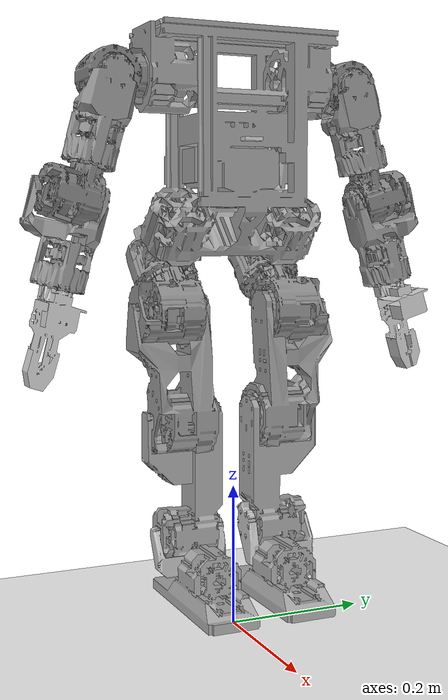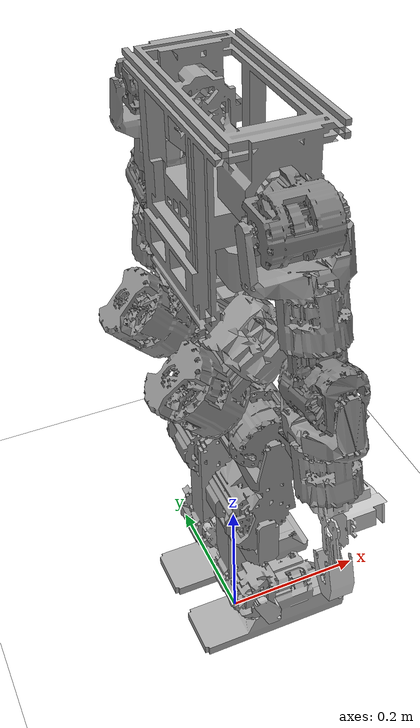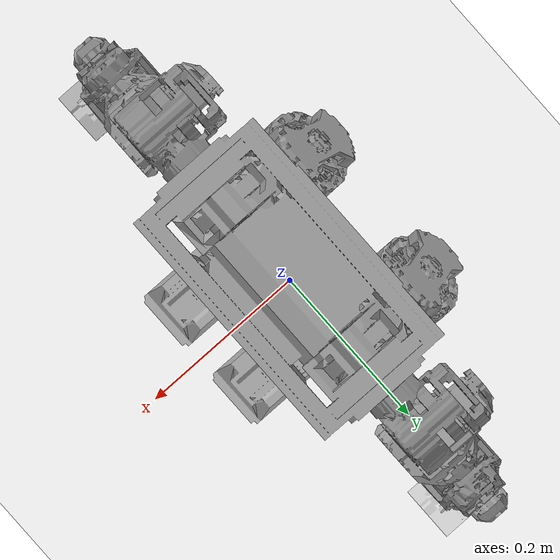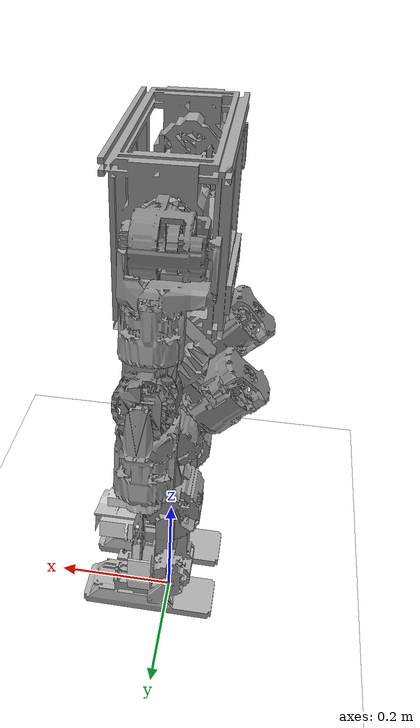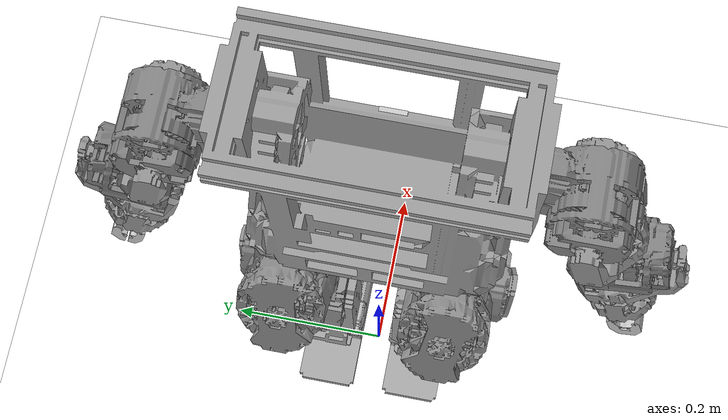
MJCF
<mujoco model="berkeley-humanoid-lite-scene">
  <include file="berkeley_humanoid_lite.xml"/>

   <!-- setup scene -->
  <statistic center="1.0 0.7 1.0" extent="0.8"/>
  <visual>
    <headlight diffuse="0.6 0.6 0.6" ambient="0.1 0.1 0.1" specular="0.9 0.9 0.9"/>
    <rgba haze="0.15 0.25 0.35 1"/>
    <global azimuth="-140" elevation="-20" offwidth="2080" offheight="1170"/>
  </visual>
  <asset>
     <texture type="skybox" builtin="gradient" rgb1="1 1 1" rgb2="1 1 1" width="800" height="800"/>
    <texture type="2d" name="groundplane" builtin="checker" mark="edge" rgb1="1 1 1" rgb2="1 1 1" markrgb="0 0 0"
      width="300" height="300"/>
    <material name="groundplane" texture="groundplane" texuniform="true" texrepeat="5 5" reflectance="0"/>
    <texture type="skybox" builtin="gradient" rgb1=".4 .5 .6" rgb2="0 0 0" width="100" height="100"/>
    <texture builtin="flat" height="1278" mark="cross" markrgb="1 1 1" name="texgeom" random="0.01" rgb1="0.8 0.6 0.4" rgb2="0.8 0.6 0.4" type="cube" width="127"/>
    <texture name="texplane" builtin="checker" height="512" width="512" rgb1=".2 .3 .4" rgb2=".1 .15 .2" type="2d" />
    <material name="MatPlane" reflectance="0.5" shininess="0.01" specular="0.1" texrepeat="1 1" texture="texplane" texuniform="true" />
    <material name="geom" texture="texgeom" texuniform="true"/>
  </asset>
   <worldbody>
    <geom name="floor" size="0 0 0.01" type="plane" material="groundplane" contype="1" conaffinity="0" priority="1"
      friction="0.6" condim="3"/>

        <light diffuse=".5 .5 .5" pos="-3 -3 5" dir="3 3 -5" castshadow="true"/>

  </worldbody>
</mujoco>

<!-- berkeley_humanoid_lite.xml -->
<!-- Generated using onshape-to-robot -->
<!-- Onshape document_id: 8eacf058d85ce70fa4dc9355 -->
<mujoco model="berkeley-humanoid-lite">
  <compiler angle="radian" meshdir="assets" autolimits="true"/>
  <default>
    <default class="berkeley-humanoid-lite">
      <joint frictionloss="0.1" armature="0.005"/>
      <position kp="50" dampratio="1"/>
      <default class="visual">
        <geom type="mesh" contype="0" conaffinity="0" group="2"/>
      </default>
      <default class="collision">
        <geom group="3"/>
      </default>
    </default>
  </default>
  <worldbody>
    <!-- Link base -->
    <body name="base" pos="0 0 0" quat="1 0 0 0" childclass="berkeley-humanoid-lite">
      <freejoint name="base_freejoint"/>
      <inertial pos="-0.0030965 0.000264765 0.675059" mass="4.44401" fullinertia="0.0667167 0.0447686 0.0318661 1.21504e-06 -0.00131643 2.88151e-05"/>
      <!-- Part base_parts -->
      <geom class="collision" pos="-6.93889e-18 7.53521e-18 0.71" quat="0.707107 -4.0797e-15 3.77476e-15 -0.707107" type="box" size="0.075 0.07 0.115"/>
      <geom type="mesh" class="visual" pos="-0.0030965 0.000264765 0.675059" quat="1 0 0 0" mesh="base_visual" material="base_visual_material"/>
      <!-- Link imu_2 -->
      <body name="imu_2" pos="0.061722 -1.49319e-16 0.68" quat="1 -0 1.13243e-14 -1.32862e-15">
        <!-- Joint from base to imu_2 -->
        <!-- Joint is "fixed", skipping it -->
        <inertial pos="3.52366e-18 9.75464e-19 0.0025" mass="0.00197704" fullinertia="1.11441e-07 4.06118e-08 1.43815e-07 1.34895e-38 0 0"/>
        <!-- Part imu_2_parts -->
        <geom type="mesh" class="visual" pos="6.93889e-18 9.75464e-19 0.0025" quat="1 -0 -1.14353e-14 1.32862e-15" mesh="imu_2_visual" material="imu_2_visual_material"/>
        <!-- Frame imu -->
        <site group="3" name="imu" pos="0 -6.33816e-19 0.005" quat="1 0 0 0"/>
      </body>
      <!-- Link arm_left_shoulder_pitch -->
      <body name="arm_left_shoulder_pitch" pos="8.30342e-16 0.133 0.764028" quat="0.707107 -0.707107 8.33777e-14 8.37625e-14">
        <!-- Joint from base to arm_left_shoulder_pitch -->
        <joint axis="0 0 1" name="arm_left_shoulder_pitch_joint" type="hinge" range="-1.5707963267951106 0.7853981633972342"/>
        <inertial pos="-0.00661228 -8.80749e-05 0.0396144" mass="0.342876" fullinertia="0.000218285 0.000260325 0.00022463 -1.17021e-06 1.05191e-05 -4.52438e-07"/>
        <!-- Part arm_left_shoulder_pitch_parts -->
        <geom type="mesh" class="visual" pos="-0.00661228 -8.80749e-05 0.0396144" quat="0.707107 0.707107 -8.34888e-14 -8.37625e-14" mesh="arm_left_shoulder_pitch_visual" material="arm_left_shoulder_pitch_visual_material"/>
        <!-- Link arm_left_shoulder_roll -->
        <body name="arm_left_shoulder_roll" pos="0.0255 -1.44329e-15 0.043" quat="0.701057 0.092296 0.701057 0.092296">
          <!-- Joint from arm_left_shoulder_pitch to arm_left_shoulder_roll -->
          <joint axis="0 0 1" name="arm_left_shoulder_roll_joint" type="hinge" range="-0.26179938779914935 1.3089969389957472"/>
          <inertial pos="-4.00762e-05 0.0737019 -0.0277329" mass="0.443945" fullinertia="0.000698118 0.000365437 0.000568315 -4.07105e-07 -1.31045e-07 -1.56428e-05"/>
          <!-- Part arm_left_shoulder_roll_parts -->
          <geom type="mesh" class="visual" pos="-4.00762e-05 0.0737019 -0.0277329" quat="0.560986 0.430459 -0.560986 0.430459" mesh="arm_left_shoulder_roll_visual" material="arm_left_shoulder_roll_visual_material"/>
          <!-- Link arm_left_shoulder_yaw -->
          <body name="arm_left_shoulder_yaw" pos="2.77001e-14 0.123 -0.0255" quat="0.707107 -0.707107 1.71529e-13 2.12735e-13">
            <!-- Joint from arm_left_shoulder_roll to arm_left_shoulder_yaw -->
            <joint axis="0 0 1" name="arm_left_shoulder_yaw_joint" type="hinge" range="-0.7853981633969607 0.7853981633979359"/>
            <inertial pos="-0.00781722 -9.17114e-05 0.0409759" mass="0.329199" fullinertia="0.000196136 0.000241556 0.000214842 -1.164e-06 8.20811e-06 -4.93374e-07"/>
            <!-- Part arm_left_shoulder_yaw_parts -->
            <geom class="collision" pos="5.26142e-15 -3.0972e-15 -0.035" quat="7.54919e-14 1.29133e-14 1 -4.42219e-14" type="cylinder" size="0.04 0.075"/>
            <geom type="mesh" class="visual" pos="-0.00781722 -9.17114e-05 0.0409759" quat="0.092296 0.701057 -0.701057 -0.092296" mesh="arm_left_shoulder_yaw_visual" material="arm_left_shoulder_yaw_visual_material"/>
            <!-- Link arm_left_elbow_pitch -->
            <body name="arm_left_elbow_pitch" pos="0.0245 6.0295e-17 0.043" quat="0.5 0.5 0.5 0.5">
              <!-- Joint from arm_left_shoulder_yaw to arm_left_elbow_pitch -->
              <joint axis="0 0 1" name="arm_left_elbow_pitch_joint" type="hinge" range="-6.163958232718869e-13 1.5707963267942802"/>
              <inertial pos="-4.00762e-05 0.0737019 -0.0277329" mass="0.443945" fullinertia="0.000698118 0.000365437 0.000568315 -4.07105e-07 -1.31045e-07 -1.56428e-05"/>
              <!-- Part arm_left_elbow_pitch_parts -->
              <geom type="mesh" class="visual" pos="-4.00762e-05 0.0737019 -0.0277329" quat="1.1202e-13 2.05638e-13 0.793353 -0.608761" mesh="arm_left_elbow_pitch_visual" material="arm_left_elbow_pitch_visual_material"/>
              <!-- Link arm_left_elbow_roll -->
              <body name="arm_left_elbow_roll" pos="-3.16213e-14 0.123 -0.0255" quat="0.707107 -0.707107 -1.55431e-14 1.43945e-13">
                <!-- Joint from arm_left_elbow_pitch to arm_left_elbow_roll -->
                <joint axis="0 0 1" name="arm_left_elbow_roll_joint" type="hinge" range="-0.7853981633974643 0.7853981633974323"/>
                <inertial pos="-6.0299e-19 -2.28764e-17 0.005" mass="0.000826239" fullinertia="1.20493e-08 1.20493e-08 1.0328e-08 -1.61704e-36 6.37804e-38 -2.09406e-25"/>
                <!-- Part arm_left_elbow_roll_parts -->
                <geom class="collision" pos="-6.74047e-19 -4.04359e-17 -0.01" quat="0 1 0 0" type="cylinder" size="0.03 0.06"/>
                <geom type="mesh" class="visual" pos="-6.0299e-19 0 0.005" quat="1.66123e-13 -3.29375e-13 -0.991445 -0.130526" mesh="arm_left_elbow_roll_visual" material="arm_left_elbow_roll_visual_material"/>
                <!-- Link arm_left_hand_link -->
                <body name="arm_left_hand_link" pos="-6.31089e-30 -5.55112e-17 5.55112e-17" quat="4.74826e-15 -0.707107 0.707107 4.75263e-15">
                  <!-- Joint from arm_left_elbow_roll to arm_left_hand_link -->
                  <!-- Joint is "fixed", skipping it -->
                  <inertial pos="-0.00248666 0.0134979 -0.0541316" mass="0.291741" fullinertia="0.000556491 0.000494025 0.000161723 3.82363e-06 -2.67254e-06 -0.000102102"/>
                  <!-- Part arm_left_hand_link_parts -->
                  <geom type="mesh" class="visual" pos="-0.00248666 0.0134979 -0.0541316" quat="0.701057 -0.092296 -0.092296 0.701057" mesh="arm_left_hand_link_visual" material="arm_left_hand_link_visual_material"/>
                </body>
              </body>
            </body>
          </body>
        </body>
      </body>
      <!-- Link arm_right_shoulder_pitch -->
      <body name="arm_right_shoulder_pitch" pos="1.14127e-16 -0.133 0.764028" quat="7.58106e-16 3.10169e-15 -0.707107 0.707107">
        <!-- Joint from base to arm_right_shoulder_pitch -->
        <joint axis="0 0 1" name="arm_right_shoulder_pitch_joint" type="hinge" range="-0.7853981633975176 1.5707963267948273"/>
        <inertial pos="0.00661228 -1.57066e-05 0.0397088" mass="0.342876" fullinertia="0.000218503 0.000260541 0.000224632 2.55599e-07 -1.17928e-05 5.72405e-07"/>
        <!-- Part arm_right_shoulder_pitch_parts -->
        <geom type="mesh" class="visual" pos="0.00661228 -1.57066e-05 0.0397088" quat="7.64341e-16 -3.11047e-15 0.707107 -0.707107" mesh="arm_right_shoulder_pitch_visual" material="arm_right_shoulder_pitch_visual_material"/>
        <!-- Link arm_right_shoulder_roll -->
        <body name="arm_right_shoulder_roll" pos="-0.0255 3.21965e-15 0.043" quat="0.701057 0.092296 -0.701057 -0.092296">
          <!-- Joint from arm_right_shoulder_pitch to arm_right_shoulder_roll -->
          <joint axis="0 0 1" name="arm_right_shoulder_roll_joint" type="hinge" range="-1.308996938995624 0.2617993877992726"/>
          <inertial pos="-4.00762e-05 0.0737019 -0.0277329" mass="0.443945" fullinertia="0.000698118 0.000365437 0.000568315 -4.07105e-07 -1.31045e-07 -1.56428e-05"/>
          <!-- Part arm_right_shoulder_roll_parts -->
          <geom type="mesh" class="visual" pos="-4.00762e-05 0.0737019 -0.0277329" quat="0.430459 0.560986 -0.430459 0.560986" mesh="arm_right_shoulder_roll_visual" material="arm_right_shoulder_roll_visual_material"/>
          <!-- Link arm_right_shoulder_yaw -->
          <body name="arm_right_shoulder_yaw" pos="8.10463e-15 0.123 -0.0255" quat="1.70719e-14 -1.0775e-13 -0.707107 -0.707107">
            <!-- Joint from arm_right_shoulder_roll to arm_right_shoulder_yaw -->
            <joint axis="0 0 1" name="arm_right_shoulder_yaw_joint" type="hinge" range="-0.7853981633974572 0.7853981633974394"/>
            <inertial pos="-0.00781722 -1.63693e-05 0.0404875" mass="0.329199" fullinertia="0.000195409 0.000240827 0.000214844 -2.54474e-07 1.84257e-06 -5.40945e-07"/>
            <!-- Part arm_right_shoulder_yaw_parts -->
            <geom class="collision" pos="-2.1684e-16 -1.93193e-15 -0.035" quat="2.75821e-14 1 3.39624e-14 -3.27543e-15" type="cylinder" size="0.04 0.075"/>
            <geom type="mesh" class="visual" pos="-0.00781722 -1.63693e-05 0.0404875" quat="0.092296 -0.701057 -0.701057 0.092296" mesh="arm_right_shoulder_yaw_visual" material="arm_right_shoulder_yaw_visual_material"/>
            <!-- Link arm_right_elbow_pitch -->
            <body name="arm_right_elbow_pitch" pos="0.0245 6.99949e-15 0.043" quat="0.5 0.5 0.5 0.5">
              <!-- Joint from arm_right_shoulder_yaw to arm_right_elbow_pitch -->
              <joint axis="0 0 1" name="arm_right_elbow_pitch_joint" type="hinge" range="-1.5707963267948966 -0.0"/>
              <inertial pos="-4.00762e-05 0.0737019 -0.0277329" mass="0.443945" fullinertia="0.000698118 0.000365437 0.000568315 -4.07105e-07 -1.31045e-07 -1.56428e-05"/>
              <!-- Part arm_right_elbow_pitch_parts -->
              <geom type="mesh" class="visual" pos="-4.00762e-05 0.0737019 -0.0277329" quat="0.608761 0.793353 -2.38698e-14 5.30719e-14" mesh="arm_right_elbow_pitch_visual" material="arm_right_elbow_pitch_visual_material"/>
              <!-- Link arm_right_elbow_roll -->
              <body name="arm_right_elbow_roll" pos="3.07195e-14 0.123 -0.0255" quat="1.21264e-14 9.88692e-15 -0.707107 -0.707107">
                <!-- Joint from arm_right_elbow_pitch to arm_right_elbow_roll -->
                <joint axis="0 0 1" name="arm_right_elbow_roll_joint" type="hinge" range="-0.7853981633974847 0.7853981633974119"/>
                <inertial pos="-6.0299e-19 2.4885e-17 0.005" mass="0.000826239" fullinertia="1.20493e-08 1.20493e-08 1.0328e-08 -4.56561e-37 1.0276e-37 9.90656e-25"/>
                <!-- Part arm_right_elbow_roll_parts -->
                <geom class="collision" pos="-6.74047e-19 3.15807e-17 -0.01" quat="0 1 0 0" type="cylinder" size="0.03 0.06"/>
                <geom type="mesh" class="visual" pos="-6.0299e-19 5.55112e-17 0.005" quat="5.56185e-15 -5.78053e-14 -0.991445 0.130526" mesh="arm_right_elbow_roll_visual" material="arm_right_elbow_roll_visual_material"/>
                <!-- Link arm_right_hand_link -->
                <body name="arm_right_hand_link" pos="-6.74047e-19 5.55112e-17 0" quat="6.63921e-17 -0.707107 0.707107 -3.54543e-15">
                  <!-- Joint from arm_right_elbow_roll to arm_right_hand_link -->
                  <!-- Joint is "fixed", skipping it -->
                  <inertial pos="-0.00248666 0.0134979 -0.0541316" mass="0.291741" fullinertia="0.000556491 0.000494025 0.000161723 3.82363e-06 -2.67254e-06 -0.000102102"/>
                  <!-- Part arm_right_hand_link_parts -->
                  <geom type="mesh" class="visual" pos="-0.00248666 0.0134979 -0.0541316" quat="0.701057 0.092296 0.092296 0.701057" mesh="arm_right_hand_link_visual" material="arm_right_hand_link_visual_material"/>
                </body>
              </body>
            </body>
          </body>
        </body>
      </body>
      <!-- Link leg_left_hip_roll -->
      <body name="leg_left_hip_roll" pos="-0.0290919 0.08 0.542631" quat="0.92388 2.2031e-15 0.382683 -3.50846e-15">
        <!-- Joint from base to leg_left_hip_roll -->
        <joint axis="0 0 1" name="leg_left_hip_roll_joint" type="hinge" range="-0.17453292519942407 1.5707963267949054"/>
        <inertial pos="-0.00410941 -0.000112596 -0.0464623" mass="0.83786" fullinertia="0.000979918 0.000896043 0.000727678 6.45954e-06 -1.63173e-05 -5.43389e-06"/>
        <!-- Part leg_left_hip_roll_parts -->
        <geom type="mesh" class="visual" pos="-0.00410941 -0.000112596 -0.0464623" quat="0.92388 -2.16884e-15 -0.382683 3.48213e-15" mesh="leg_left_hip_roll_visual" material="leg_left_hip_roll_visual_material"/>
        <!-- Link leg_left_hip_yaw -->
        <body name="leg_left_hip_yaw" pos="0.027 0 -0.052" quat="0.5 -0.5 0.5 -0.5">
          <!-- Joint from leg_left_hip_roll to leg_left_hip_yaw -->
          <joint axis="0 0 1" name="leg_left_hip_yaw_joint" type="hinge" range="-0.9817477042468086 0.589048622548088"/>
          <inertial pos="-0.00411632 -8.63203e-05 0.0463382" mass="0.837683" fullinertia="0.000979031 0.000898166 0.000724287 -1.13217e-06 1.96352e-05 -5.91541e-06"/>
          <!-- Part leg_left_hip_yaw_parts -->
          <geom type="mesh" class="visual" pos="-0.00411632 -8.63203e-05 0.0463382" quat="0.270598 0.653281 -0.653281 0.270598" mesh="leg_left_hip_yaw_visual" material="leg_left_hip_yaw_visual_material"/>
          <!-- Link leg_left_hip_pitch -->
          <body name="leg_left_hip_pitch" pos="0.027 -1.11022e-16 0.052" quat="0.653281 0.270598 -0.653281 -0.270598">
            <!-- Joint from leg_left_hip_yaw to leg_left_hip_pitch -->
            <joint axis="0 0 1" name="leg_left_hip_pitch_joint" type="hinge" range="-1.898045561543828 0.9817477042468157"/>
            <inertial pos="0.0030405 0.120388 0.0210924" mass="0.947974" fullinertia="0.00286449 0.00102465 0.00259958 0.00012235 -2.15676e-05 0.000265775"/>
            <!-- Part leg_left_hip_pitch_parts -->
            <geom class="collision" pos="0.00597627 0.039 0.0295" quat="0.5 0.5 0.5 -0.5" type="cylinder" size="0.05 0.065"/>
            <geom type="mesh" class="visual" pos="0.0030405 0.120388 0.0210924" quat="0.707107 0.707107 -3.77476e-15 1.5388e-15" mesh="leg_left_hip_pitch_visual" material="leg_left_hip_pitch_visual_material"/>
            <!-- Link leg_left_knee_pitch -->
            <body name="leg_left_knee_pitch" pos="4.04191e-16 0.15 -0.018" quat="3.45879e-14 8.61273e-17 -2.22045e-16 -1">
              <!-- Joint from leg_left_hip_pitch to leg_left_knee_pitch -->
              <joint axis="0 0 1" name="leg_left_knee_pitch_joint" type="hinge" range="-3.161915174132446e-13 2.443460952791745"/>
              <inertial pos="-4.14041e-05 -0.112249 0.0257397" mass="0.653864" fullinertia="0.00230126 0.000559753 0.00203727 -4.24923e-07 1.36589e-06 3.7889e-05"/>
              <!-- Part leg_left_knee_pitch_parts -->
              <geom class="collision" pos="-5.41812e-15 -0.115 0.022" quat="0.5 -0.5 0.5 0.5" type="cylinder" size="0.04 0.075"/>
              <geom type="mesh" class="visual" pos="-4.14041e-05 -0.112249 0.0257397" quat="2.29784e-14 2.81389e-14 0.707107 0.707107" mesh="leg_left_knee_pitch_visual" material="leg_left_knee_pitch_visual_material"/>
              <!-- Link leg_left_ankle_pitch -->
              <body name="leg_left_ankle_pitch" pos="-2.44769e-15 -0.16 -0.003" quat="7.11333e-14 -3.2474e-15 -3.33067e-15 -1">
                <!-- Joint from leg_left_knee_pitch to leg_left_ankle_pitch -->
                <joint axis="0 0 1" name="leg_left_ankle_pitch_joint" type="hinge" range="-0.7853981633972413 0.7853981633976552"/>
                <inertial pos="0.0131065 0.0273743 0.0274153" mass="0.106196" fullinertia="0.000188241 0.000142962 8.17202e-05 -2.50802e-05 -7.26755e-06 -7.72963e-06"/>
                <!-- Part leg_left_ankle_pitch_parts -->
                <geom type="mesh" class="visual" pos="0.0131065 0.0273743 0.0274153" quat="0.707107 0.707107 -7.61613e-14 -7.56307e-14" mesh="leg_left_ankle_pitch_visual" material="leg_left_ankle_pitch_visual_material"/>
                <!-- Link leg_left_ankle_roll -->
                <body name="leg_left_ankle_roll" pos="0.03 0.05 0.025" quat="0.707107 5.90793e-14 0.707107 5.4734e-14">
                  <!-- Joint from leg_left_ankle_pitch to leg_left_ankle_roll -->
                  <joint axis="0 0 1" name="leg_left_ankle_roll_joint" type="hinge" range="-0.2617993877993173 0.26179938779898154"/>
                  <inertial pos="2.29341e-05 0.0226611 0.0197836" mass="0.706476" fullinertia="0.00198705 0.00190341 0.000619673 5.37011e-07 -8.3949e-07 0.000143151"/>
                  <!-- Part leg_left_ankle_roll_parts -->
                  <geom class="collision" pos="1.4526e-14 0.03 0.006" quat="0.707107 0.707107 -8.02691e-14 3.1405e-14" type="box" size="0.036 0.11 0.02"/>
                  <geom type="mesh" class="visual" pos="2.29341e-05 0.0226611 0.0197836" quat="0.5 0.5 -0.5 0.5" mesh="leg_left_ankle_roll_visual" material="leg_left_ankle_roll_visual_material"/>
                </body>
              </body>
            </body>
          </body>
        </body>
      </body>
      <!-- Link leg_right_hip_roll -->
      <body name="leg_right_hip_roll" pos="-0.0290919 -0.08 0.542631" quat="3.56125e-15 0.382683 -2.33147e-15 0.92388">
        <!-- Joint from base to leg_right_hip_roll -->
        <joint axis="0 0 1" name="leg_right_hip_roll_joint" type="hinge" range="-1.570796326794886 0.1745329251994436"/>
        <inertial pos="0.00410941 -0.00018505 -0.0464478" mass="0.83786" fullinertia="0.000979766 0.000896334 0.000727235 -3.69135e-06 1.57667e-05 -4.74708e-06"/>
        <!-- Part leg_right_hip_roll_parts -->
        <geom type="mesh" class="visual" pos="0.00410941 -0.00018505 -0.0464478" quat="3.46227e-15 -0.382683 2.44249e-15 -0.92388" mesh="leg_right_hip_roll_visual" material="leg_right_hip_roll_visual_material"/>
        <!-- Link leg_right_hip_yaw -->
        <body name="leg_right_hip_yaw" pos="-0.027 -1.38778e-17 -0.052" quat="0.5 -0.5 -0.5 0.5">
          <!-- Joint from leg_right_hip_roll to leg_right_hip_yaw -->
          <joint axis="0 0 1" name="leg_right_hip_yaw_joint" type="hinge" range="-0.589048622548088 0.9817477042468086"/>
          <inertial pos="0.00411632 -1.3851e-05 0.0463238" mass="0.837683" fullinertia="0.000978901 0.000898454 0.000723868 -1.63559e-06 -1.90847e-05 -5.23378e-06"/>
          <!-- Part leg_right_hip_yaw_parts -->
          <geom type="mesh" class="visual" pos="0.00411632 -1.3851e-05 0.0463238" quat="0.270598 0.653281 -0.653281 0.270598" mesh="leg_right_hip_yaw_visual" material="leg_right_hip_yaw_visual_material"/>
          <!-- Link leg_right_hip_pitch -->
          <body name="leg_right_hip_pitch" pos="-0.027 -2.22045e-16 0.052" quat="0.653281 0.270598 -0.653281 -0.270598">
            <!-- Joint from leg_right_hip_yaw to leg_right_hip_pitch -->
            <joint axis="0 0 1" name="leg_right_hip_pitch_joint" type="hinge" range="-1.898045561543837 0.9817477042468068"/>
            <inertial pos="0.00319928 0.120388 -0.0210924" mass="0.947974" fullinertia="0.00286448 0.00102371 0.00259864 0.000117078 2.6845e-05 -0.000265774"/>
            <!-- Part leg_right_hip_pitch_parts -->
            <geom class="collision" pos="0.00597627 0.039 -0.0295" quat="0.5 0.5 0.5 -0.5" type="cylinder" size="0.05 0.065"/>
            <geom type="mesh" class="visual" pos="0.00319928 0.120388 -0.0210924" quat="0.707107 0.707107 -3.33067e-15 1.53385e-15" mesh="leg_right_hip_pitch_visual" material="leg_right_hip_pitch_visual_material"/>
            <!-- Link leg_right_knee_pitch -->
            <body name="leg_right_knee_pitch" pos="0 0.15 0.018" quat="1 7.6405e-17 -2.22045e-16 -1.42867e-16">
              <!-- Joint from leg_right_hip_pitch to leg_right_knee_pitch -->
              <joint axis="0 0 1" name="leg_right_knee_pitch_joint" type="hinge" range="-1.0835776720341528e-13 2.443460952791953"/>
              <inertial pos="-5.09429e-05 0.112249 -0.0257397" mass="0.653864" fullinertia="0.00230126 0.000559752 0.00203727 1.34936e-06 -1.17826e-06 3.7889e-05"/>
              <!-- Part leg_right_knee_pitch_parts -->
              <geom class="collision" pos="1.15514e-14 0.115 -0.022" quat="0.5 0.5 0.5 -0.5" type="cylinder" size="0.04 0.075"/>
              <geom type="mesh" class="visual" pos="-5.09429e-05 0.112249 -0.0257397" quat="0.707107 0.707107 -3.44169e-15 1.39536e-15" mesh="leg_right_knee_pitch_visual" material="leg_right_knee_pitch_visual_material"/>
              <!-- Link leg_right_ankle_pitch -->
              <body name="leg_right_ankle_pitch" pos="1.42421e-15 0.16 0.003" quat="1 -5.55112e-17 -0 -5.60814e-14">
                <!-- Joint from leg_right_knee_pitch to leg_right_ankle_pitch -->
                <joint axis="0 0 1" name="leg_right_ankle_pitch_joint" type="hinge" range="-0.7853981633975202 0.7853981633973763"/>
                <inertial pos="0.0131065 0.0273743 -0.0274153" mass="0.106196" fullinertia="0.000188241 0.000142962 8.17203e-05 -2.50802e-05 7.26754e-06 7.72962e-06"/>
                <!-- Part leg_right_ankle_pitch_parts -->
                <geom type="mesh" class="visual" pos="0.0131065 0.0273743 -0.0274153" quat="0.707107 0.707107 3.64153e-14 4.12065e-14" mesh="leg_right_ankle_pitch_visual" material="leg_right_ankle_pitch_visual_material"/>
                <!-- Link leg_right_ankle_roll -->
                <body name="leg_right_ankle_roll" pos="0.03 0.05 -0.025" quat="0.707107 4.34616e-14 0.707107 4.48139e-14">
                  <!-- Joint from leg_right_ankle_pitch to leg_right_ankle_roll -->
                  <joint axis="0 0 1" name="leg_right_ankle_roll_joint" type="hinge" range="-0.26179938779927375 0.26179938779902506"/>
                  <inertial pos="2.29341e-05 0.0226611 0.0197836" mass="0.706476" fullinertia="0.00198705 0.00190341 0.000619673 5.37011e-07 -8.3949e-07 0.000143151"/>
                  <!-- Part leg_right_ankle_roll_parts -->
                  <geom class="collision" pos="6.38304e-15 0.03 0.006" quat="0.707107 0.707107 8.41549e-14 -2.33354e-13" type="box" size="0.036 0.11 0.02"/>
                  <geom type="mesh" class="visual" pos="2.29341e-05 0.0226611 0.0197836" quat="0.5 0.5 -0.5 0.5" mesh="leg_right_ankle_roll_visual" material="leg_right_ankle_roll_visual_material"/>
                </body>
              </body>
            </body>
          </body>
        </body>
      </body>
    </body>
  </worldbody>
  <asset>
    <mesh file="merged/arm_right_hand_link_visual.stl"/>
    <mesh file="merged/leg_left_knee_pitch_visual.stl"/>
    <mesh file="merged/imu_2_visual.stl"/>
    <mesh file="merged/arm_left_elbow_pitch_visual.stl"/>
    <mesh file="merged/arm_left_shoulder_pitch_visual.stl"/>
    <mesh file="merged/arm_right_elbow_roll_visual.stl"/>
    <mesh file="merged/arm_left_shoulder_roll_visual.stl"/>
    <mesh file="merged/arm_right_shoulder_pitch_visual.stl"/>
    <mesh file="merged/leg_left_hip_yaw_visual.stl"/>
    <mesh file="merged/leg_left_hip_roll_visual.stl"/>
    <mesh file="merged/base_visual.stl"/>
    <mesh file="merged/arm_right_shoulder_yaw_visual.stl"/>
    <mesh file="merged/leg_right_ankle_pitch_visual.stl"/>
    <mesh file="merged/leg_left_ankle_pitch_visual.stl"/>
    <mesh file="merged/leg_left_hip_pitch_visual.stl"/>
    <mesh file="merged/leg_right_hip_roll_visual.stl"/>
    <mesh file="merged/arm_right_shoulder_roll_visual.stl"/>
    <mesh file="merged/leg_right_hip_pitch_visual.stl"/>
    <mesh file="merged/arm_left_elbow_roll_visual.stl"/>
    <mesh file="merged/leg_right_hip_yaw_visual.stl"/>
    <mesh file="merged/arm_left_hand_link_visual.stl"/>
    <mesh file="merged/arm_right_elbow_pitch_visual.stl"/>
    <mesh file="merged/leg_left_ankle_roll_visual.stl"/>
    <mesh file="merged/arm_left_shoulder_yaw_visual.stl"/>
    <mesh file="merged/leg_right_knee_pitch_visual.stl"/>
    <mesh file="merged/leg_right_ankle_roll_visual.stl"/>
    <material name="base_visual_material" rgba="0.618701 0.618701 0.618701 1"/>
    <material name="imu_2_visual_material" rgba="0.8 0.8 0.8 1"/>
    <material name="arm_left_shoulder_pitch_visual_material" rgba="0.521528 0.521528 0.521528 1"/>
    <material name="arm_left_shoulder_roll_visual_material" rgba="0.584926 0.584926 0.584926 1"/>
    <material name="arm_left_shoulder_yaw_visual_material" rgba="0.509959 0.509959 0.509959 1"/>
    <material name="arm_left_elbow_pitch_visual_material" rgba="0.584926 0.584926 0.584926 1"/>
    <material name="arm_left_elbow_roll_visual_material" rgba="0.8 0.8 0.8 1"/>
    <material name="arm_left_hand_link_visual_material" rgba="0.8 0.8 0.8 1"/>
    <material name="arm_right_shoulder_pitch_visual_material" rgba="0.521528 0.521528 0.521528 1"/>
    <material name="arm_right_shoulder_roll_visual_material" rgba="0.584926 0.584926 0.584926 1"/>
    <material name="arm_right_shoulder_yaw_visual_material" rgba="0.509959 0.509959 0.509959 1"/>
    <material name="arm_right_elbow_pitch_visual_material" rgba="0.584926 0.584926 0.584926 1"/>
    <material name="arm_right_elbow_roll_visual_material" rgba="0.8 0.8 0.8 1"/>
    <material name="arm_right_hand_link_visual_material" rgba="0.8 0.8 0.8 1"/>
    <material name="leg_left_hip_roll_visual_material" rgba="0.559597 0.559597 0.559597 1"/>
    <material name="leg_left_hip_yaw_visual_material" rgba="0.559547 0.559547 0.559547 1"/>
    <material name="leg_left_hip_pitch_visual_material" rgba="0.587522 0.587522 0.587522 1"/>
    <material name="leg_left_knee_pitch_visual_material" rgba="0.644721 0.644721 0.644721 1"/>
    <material name="leg_left_ankle_pitch_visual_material" rgba="0.743029 0.743029 0.743029 1"/>
    <material name="leg_left_ankle_roll_visual_material" rgba="0.664849 0.664849 0.664849 1"/>
    <material name="leg_right_hip_roll_visual_material" rgba="0.559597 0.559597 0.559597 1"/>
    <material name="leg_right_hip_yaw_visual_material" rgba="0.559547 0.559547 0.559547 1"/>
    <material name="leg_right_hip_pitch_visual_material" rgba="0.587522 0.587522 0.587522 1"/>
    <material name="leg_right_knee_pitch_visual_material" rgba="0.644721 0.644721 0.644721 1"/>
    <material name="leg_right_ankle_pitch_visual_material" rgba="0.743029 0.743029 0.743029 1"/>
    <material name="leg_right_ankle_roll_visual_material" rgba="0.664849 0.664849 0.664849 1"/>
  </asset>
  <actuator>
    <motor class="berkeley-humanoid-lite" name="arm_left_shoulder_pitch_joint" joint="arm_left_shoulder_pitch_joint" forcerange="-20 20"/>
    <motor class="berkeley-humanoid-lite" name="arm_left_shoulder_roll_joint" joint="arm_left_shoulder_roll_joint" forcerange="-20 20"/>
    <motor class="berkeley-humanoid-lite" name="arm_left_shoulder_yaw_joint" joint="arm_left_shoulder_yaw_joint" forcerange="-20 20"/>
    <motor class="berkeley-humanoid-lite" name="arm_left_elbow_pitch_joint" joint="arm_left_elbow_pitch_joint" forcerange="-20 20"/>
    <motor class="berkeley-humanoid-lite" name="arm_left_elbow_roll_joint" joint="arm_left_elbow_roll_joint" forcerange="-20 20"/>
    <motor class="berkeley-humanoid-lite" name="arm_right_shoulder_pitch_joint" joint="arm_right_shoulder_pitch_joint" forcerange="-20 20"/>
    <motor class="berkeley-humanoid-lite" name="arm_right_shoulder_roll_joint" joint="arm_right_shoulder_roll_joint" forcerange="-20 20"/>
    <motor class="berkeley-humanoid-lite" name="arm_right_shoulder_yaw_joint" joint="arm_right_shoulder_yaw_joint" forcerange="-20 20"/>
    <motor class="berkeley-humanoid-lite" name="arm_right_elbow_pitch_joint" joint="arm_right_elbow_pitch_joint" forcerange="-20 20"/>
    <motor class="berkeley-humanoid-lite" name="arm_right_elbow_roll_joint" joint="arm_right_elbow_roll_joint" forcerange="-20 20"/>
    <motor class="berkeley-humanoid-lite" name="leg_left_hip_roll_joint" joint="leg_left_hip_roll_joint" forcerange="-20 20"/>
    <motor class="berkeley-humanoid-lite" name="leg_left_hip_yaw_joint" joint="leg_left_hip_yaw_joint" forcerange="-20 20"/>
    <motor class="berkeley-humanoid-lite" name="leg_left_hip_pitch_joint" joint="leg_left_hip_pitch_joint" forcerange="-20 20"/>
    <motor class="berkeley-humanoid-lite" name="leg_left_knee_pitch_joint" joint="leg_left_knee_pitch_joint" forcerange="-20 20"/>
    <motor class="berkeley-humanoid-lite" name="leg_left_ankle_pitch_joint" joint="leg_left_ankle_pitch_joint" forcerange="-20 20"/>
    <motor class="berkeley-humanoid-lite" name="leg_left_ankle_roll_joint" joint="leg_left_ankle_roll_joint" forcerange="-20 20"/>
    <motor class="berkeley-humanoid-lite" name="leg_right_hip_roll_joint" joint="leg_right_hip_roll_joint" forcerange="-20 20"/>
    <motor class="berkeley-humanoid-lite" name="leg_right_hip_yaw_joint" joint="leg_right_hip_yaw_joint" forcerange="-20 20"/>
    <motor class="berkeley-humanoid-lite" name="leg_right_hip_pitch_joint" joint="leg_right_hip_pitch_joint" forcerange="-20 20"/>
    <motor class="berkeley-humanoid-lite" name="leg_right_knee_pitch_joint" joint="leg_right_knee_pitch_joint" forcerange="-20 20"/>
    <motor class="berkeley-humanoid-lite" name="leg_right_ankle_pitch_joint" joint="leg_right_ankle_pitch_joint" forcerange="-20 20"/>
    <motor class="berkeley-humanoid-lite" name="leg_right_ankle_roll_joint" joint="leg_right_ankle_roll_joint" forcerange="-20 20"/>
  </actuator>

  <sensor>
    <jointpos name="arm_left_shoulder_pitch_pos"  joint="arm_left_shoulder_pitch_joint"/>
    <jointpos name="arm_left_shoulder_roll_pos"   joint="arm_left_shoulder_roll_joint"/>
    <jointpos name="arm_left_shoulder_yaw_pos"    joint="arm_left_shoulder_yaw_joint"/>
    <jointpos name="arm_left_elbow_pitch_pos"     joint="arm_left_elbow_pitch_joint"/>
    <jointpos name="arm_left_elbow_roll_pos"      joint="arm_left_elbow_roll_joint"/>
    <jointpos name="arm_right_shoulder_pitch_pos" joint="arm_right_shoulder_pitch_joint"/>
    <jointpos name="arm_right_shoulder_roll_pos"  joint="arm_right_shoulder_roll_joint"/>
    <jointpos name="arm_right_shoulder_yaw_pos"   joint="arm_right_shoulder_yaw_joint"/>
    <jointpos name="arm_right_elbow_pitch_pos"    joint="arm_right_elbow_pitch_joint"/>
    <jointpos name="arm_right_elbow_roll_pos"     joint="arm_right_elbow_roll_joint"/>
    <jointpos name="leg_left_hip_roll_pos"        joint="leg_left_hip_roll_joint"/>
    <jointpos name="leg_left_hip_yaw_pos"         joint="leg_left_hip_yaw_joint"/>
    <jointpos name="leg_left_hip_pitch_pos"       joint="leg_left_hip_pitch_joint"/>
    <jointpos name="leg_left_knee_pitch_pos"      joint="leg_left_knee_pitch_joint"/>
    <jointpos name="leg_left_ankle_pitch_pos"     joint="leg_left_ankle_pitch_joint"/>
    <jointpos name="leg_left_ankle_roll_pos"      joint="leg_left_ankle_roll_joint"/>
    <jointpos name="leg_right_hip_roll_pos"       joint="leg_right_hip_roll_joint"/>
    <jointpos name="leg_right_hip_yaw_pos"        joint="leg_right_hip_yaw_joint"/>
    <jointpos name="leg_right_hip_pitch_pos"      joint="leg_right_hip_pitch_joint"/>
    <jointpos name="leg_right_knee_pitch_pos"     joint="leg_right_knee_pitch_joint"/>
    <jointpos name="leg_right_ankle_pitch_pos"    joint="leg_right_ankle_pitch_joint"/>
    <jointpos name="leg_right_ankle_roll_pos"     joint="leg_right_ankle_roll_joint"/>

    <jointvel name="arm_left_shoulder_pitch_vel"  joint="arm_left_shoulder_pitch_joint"/>
    <jointvel name="arm_left_shoulder_roll_vel"   joint="arm_left_shoulder_roll_joint"/>
    <jointvel name="arm_left_shoulder_yaw_vel"    joint="arm_left_shoulder_yaw_joint"/>
    <jointvel name="arm_left_elbow_pitch_vel"     joint="arm_left_elbow_pitch_joint"/>
    <jointvel name="arm_left_elbow_roll_vel"      joint="arm_left_elbow_roll_joint"/>
    <jointvel name="arm_right_shoulder_pitch_vel" joint="arm_right_shoulder_pitch_joint"/>
    <jointvel name="arm_right_shoulder_roll_vel"  joint="arm_right_shoulder_roll_joint"/>
    <jointvel name="arm_right_shoulder_yaw_vel"   joint="arm_right_shoulder_yaw_joint"/>
    <jointvel name="arm_right_elbow_pitch_vel"    joint="arm_right_elbow_pitch_joint"/>
    <jointvel name="arm_right_elbow_roll_vel"     joint="arm_right_elbow_roll_joint"/>
    <jointvel name="leg_left_hip_roll_vel"        joint="leg_left_hip_roll_joint"/>
    <jointvel name="leg_left_hip_yaw_vel"         joint="leg_left_hip_yaw_joint"/>
    <jointvel name="leg_left_hip_pitch_vel"       joint="leg_left_hip_pitch_joint"/>
    <jointvel name="leg_left_knee_pitch_vel"      joint="leg_left_knee_pitch_joint"/>
    <jointvel name="leg_left_ankle_pitch_vel"     joint="leg_left_ankle_pitch_joint"/>
    <jointvel name="leg_left_ankle_roll_vel"      joint="leg_left_ankle_roll_joint"/>
    <jointvel name="leg_right_hip_roll_vel"       joint="leg_right_hip_roll_joint"/>
    <jointvel name="leg_right_hip_yaw_vel"        joint="leg_right_hip_yaw_joint"/>
    <jointvel name="leg_right_hip_pitch_vel"      joint="leg_right_hip_pitch_joint"/>
    <jointvel name="leg_right_knee_pitch_vel"     joint="leg_right_knee_pitch_joint"/>
    <jointvel name="leg_right_ankle_pitch_vel"    joint="leg_right_ankle_pitch_joint"/>
    <jointvel name="leg_right_ankle_roll_vel"     joint="leg_right_ankle_roll_joint"/>

    <jointactuatorfrc name="arm_left_shoulder_pitch_torque"   joint="arm_left_shoulder_pitch_joint"/>
    <jointactuatorfrc name="arm_left_shoulder_roll_torque"    joint="arm_left_shoulder_roll_joint"/>
    <jointactuatorfrc name="arm_left_shoulder_yaw_torque"     joint="arm_left_shoulder_yaw_joint"/>
    <jointactuatorfrc name="arm_left_elbow_pitch_torque"      joint="arm_left_elbow_pitch_joint"/>
    <jointactuatorfrc name="arm_left_elbow_roll_torque"       joint="arm_left_elbow_roll_joint"/>
    <jointactuatorfrc name="arm_right_shoulder_pitch_torque"  joint="arm_right_shoulder_pitch_joint"/>
    <jointactuatorfrc name="arm_right_shoulder_roll_torque"   joint="arm_right_shoulder_roll_joint"/>
    <jointactuatorfrc name="arm_right_shoulder_yaw_torque"    joint="arm_right_shoulder_yaw_joint"/>
    <jointactuatorfrc name="arm_right_elbow_pitch_torque"     joint="arm_right_elbow_pitch_joint"/>
    <jointactuatorfrc name="arm_right_elbow_roll_torque"      joint="arm_right_elbow_roll_joint"/>
    <jointactuatorfrc name="leg_left_hip_roll_torque"         joint="leg_left_hip_roll_joint"/>
    <jointactuatorfrc name="leg_left_hip_yaw_torque"          joint="leg_left_hip_yaw_joint"/>
    <jointactuatorfrc name="leg_left_hip_pitch_torque"        joint="leg_left_hip_pitch_joint"/>
    <jointactuatorfrc name="leg_left_knee_pitch_torque"       joint="leg_left_knee_pitch_joint"/>
    <jointactuatorfrc name="leg_left_ankle_pitch_torque"      joint="leg_left_ankle_pitch_joint"/>
    <jointactuatorfrc name="leg_left_ankle_roll_torque"       joint="leg_left_ankle_roll_joint"/>
    <jointactuatorfrc name="leg_right_hip_roll_torque"        joint="leg_right_hip_roll_joint"/>
    <jointactuatorfrc name="leg_right_hip_yaw_torque"         joint="leg_right_hip_yaw_joint"/>
    <jointactuatorfrc name="leg_right_hip_pitch_torque"       joint="leg_right_hip_pitch_joint"/>
    <jointactuatorfrc name="leg_right_knee_pitch_torque"      joint="leg_right_knee_pitch_joint"/>
    <jointactuatorfrc name="leg_right_ankle_pitch_torque"     joint="leg_right_ankle_pitch_joint"/>
    <jointactuatorfrc name="leg_right_ankle_roll_torque"      joint="leg_right_ankle_roll_joint"/>

    <framequat name="imu_quat" objtype="site" objname="imu" />
    <gyro name="imu_gyro" site="imu" />
    <accelerometer name="imu_acc" site="imu" />
    <framepos name="frame_pos" objtype="site" objname="imu" />
    <framelinvel name="frame_vel" objtype="site" objname="imu" />
  </sensor>
<equality/>
</mujoco>
